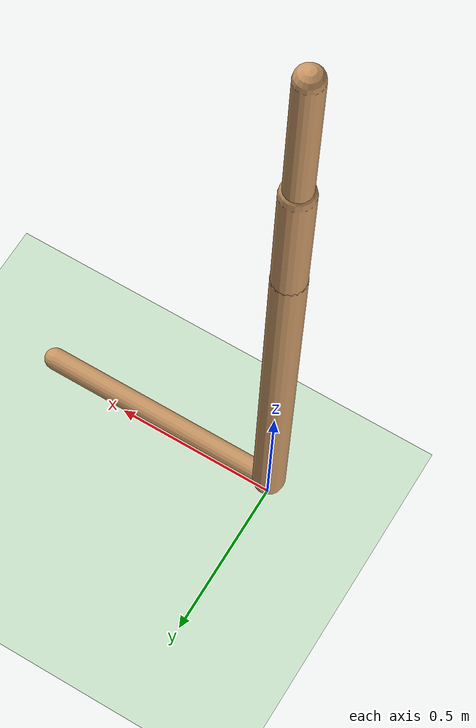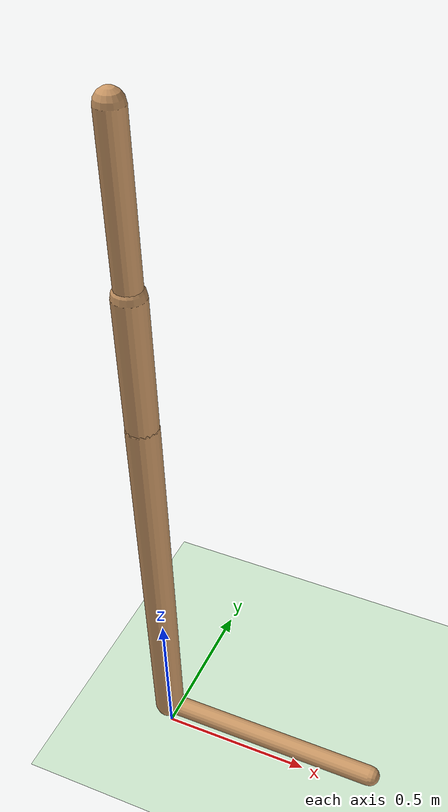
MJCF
<mujoco model="walker2d">
  <compiler angle="degree" inertiafromgeom="true" />
  <default>
    <joint armature="0.01" damping=".1" limited="true" />
    <geom conaffinity="0" condim="3" contype="1" density="1000" friction=".7 .1 .1" rgba="0.8 0.6 .4 1" />
  </default>
  <option integrator="RK4" timestep="0.002" />
  <worldbody>
    <light cutoff="100" diffuse="1 1 1" dir="-0 0 -1.3" directional="true" exponent="1" pos="0 0 1.3" specular=".1 .1 .1" />
    <geom conaffinity="1" condim="3" name="floor" pos="0 0 0" rgba="0.8 0.9 0.8 1" size="40 40 40" type="plane" material="MatPlane" />
    <body name="torso" pos="0 0 1.985223150253296">
      <camera name="track" mode="trackcom" pos="0 -5 -1.25" xyaxes="1 0 0 0 0 1" />
      <joint armature="0" axis="1 0 0" damping="0" limited="false" name="rootx" pos="0 0 -1.25" stiffness="0" type="slide" />
      <joint armature="0" axis="0 0 1" damping="0" limited="false" name="rootz" pos="0 0 -1.25" ref="1.25" stiffness="0" type="slide" />
      <joint armature="0" axis="0 1 0" damping="0" limited="false" name="rooty" pos="0 0 0" stiffness="0" type="hinge" />
      <geom friction="0.9" name="torso_geom" size="0.03870990127325058 0.23939692974090576" type="capsule" />
      <body name="thigh" pos="0 0 -0.23939692974090576">
        <joint axis="0 -1 0" name="thigh_joint" pos="0 0 0" range="-150 0" type="hinge" />
        <site name="torso_thigh_site" pos="0 0 0" size="0.01" type="sphere" rgba="1 0 0 0.5" />
        <geom friction="0.9" pos="0 0 -0.20508474111557007" name="thigh_geom" size="0.047700781375169754 0.20508474111557007" type="capsule" />
        <body name="leg" pos="0 0 -1.0279978513717651">
          <joint axis="0 -1 0" name="leg_joint" pos="0 0 0.617828369140625" range="-150 0" type="hinge" />
          <site name="thigh_leg_site" pos="0 0 0.25" size="0.01" type="sphere" rgba="1 0 0 0.5" />
          <geom friction="0.9" name="leg_geom" size="0.04882737994194031 0.617828369140625" type="capsule" />
          <body name="foot" pos="0.737645149230957 0 -0.717828369140625">
            <joint axis="0 -1 0" name="foot_joint" pos="-0.737645149230957 0 0.1" range="-45 45" type="hinge" />
            <site name="leg_foot_site" pos="-0.2 0 0.1" size="0.01" type="sphere" rgba="1 0 0 0.5" />
            <geom friction="0.9" pos="-0.3688225746154785 0 0.1" quat="0.70710678118654757 0 -0.70710678118654746 0" name="foot_geom" size="0.033433955162763596 0.3688225746154785" type="capsule" />
          </body>
        </body>
      </body>

      <body name="thigh_left" pos="0 0 -0.23939692974090576">
        <joint axis="0 -1 0" name="thigh_left_joint" pos="0 0 0" range="-150 0" type="hinge" />
        <site name="torso_thigh_left_site" pos="0 0 0" size="0.01" type="sphere" rgba="1 0 0 0.5" />
        <geom friction="0.9" name="thigh_left_geom" rgba=".7 .3 .6 1" size="0.047700781375169754 0.20508474111557007" pos="0 0 -0.20508474111557007" type="capsule" />
        <body name="leg_left" pos="0 0 -1.0279978513717651">
          <joint axis="0 -1 0" name="leg_left_joint" pos="0 0 0.617828369140625" range="-150 0" type="hinge" />
          <site name="thigh_leg_left_site" pos="0 0 0.25" size="0.01" type="sphere" rgba="1 0 0 0.5" />
          <geom friction="0.9" name="leg_left_geom" rgba=".7 .3 .6 1" size="0.04882737994194031 0.617828369140625" type="capsule" />
          <body name="foot_left" pos="0.737645149230957 0 -0.717828369140625">
            <joint axis="0 -1 0" name="foot_left_joint" pos="-0.737645149230957 0 0.1" range="-45 45" type="hinge" />
            <site name="leg_foot_left_site" pos="-0.2 0 0.1" size="0.01" type="sphere" rgba="1 0 0 0.5" />
            <geom friction="1.9" name="foot_left_geom" rgba=".7 .3 .6 1" size="0.033433955162763596 0.3688225746154785" pos="-0.3688225746154785 0 0.1" type="capsule" quat="0.70710678118654757 0 -0.70710678118654746 0" />
          </body>
        </body>
      </body>
    </body>
  </worldbody>
  <actuator>

    <motor ctrllimited="true" ctrlrange="-1.0 1.0" gear="82.95867527273373" joint="thigh_joint" />
    <motor ctrllimited="true" ctrlrange="-1.0 1.0" gear="368.2431666010328" joint="leg_joint" />
    <motor ctrllimited="true" ctrlrange="-1.0 1.0" gear="114.52241714834352" joint="foot_joint" />
    <motor ctrllimited="true" ctrlrange="-1.0 1.0" gear="82.95867527273373" joint="thigh_left_joint" />
    <motor ctrllimited="true" ctrlrange="-1.0 1.0" gear="368.2431666010328" joint="leg_left_joint" />
    <motor ctrllimited="true" ctrlrange="-1.0 1.0" gear="114.52241714834352" joint="foot_left_joint" />

  </actuator>
    <asset>
        <texture type="skybox" builtin="gradient" rgb1=".4 .5 .6" rgb2="0 0 0" width="100" height="100" />
        <texture builtin="flat" height="1278" mark="cross" markrgb="1 1 1" name="texgeom" random="0.01" rgb1="0.8 0.6 0.4" rgb2="0.8 0.6 0.4" type="cube" width="127" />
        <texture builtin="checker" height="100" name="texplane" rgb1="0 0 0" rgb2="0.8 0.8 0.8" type="2d" width="100" />
        <material name="MatPlane" reflectance="0.5" shininess="1" specular="1" texrepeat="60 60" texture="texplane" />
        <material name="geom" texture="texgeom" texuniform="true" />
    </asset>

  <sensor>
    <force site="torso_thigh_site" name="torso_thigh_sensor" />
    <force site="thigh_leg_site" name="thigh_leg_sensor" />
    <force site="leg_foot_site" name="leg_foot_sensor" />
    <force site="torso_thigh_left_site" name="torso_thigh_left_sensor" />
    <force site="thigh_leg_left_site" name="thigh_leg_left_sensor" />
    <force site="leg_foot_left_site" name="leg_foot_left_sensor" />
  </sensor>
</mujoco>
